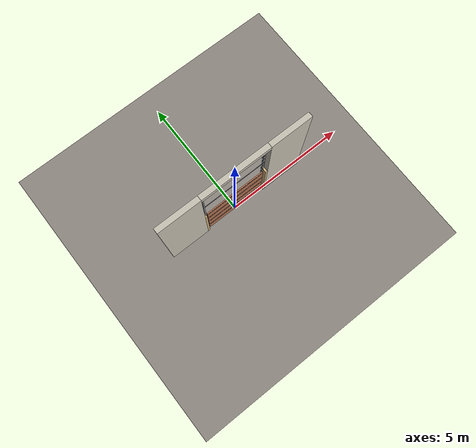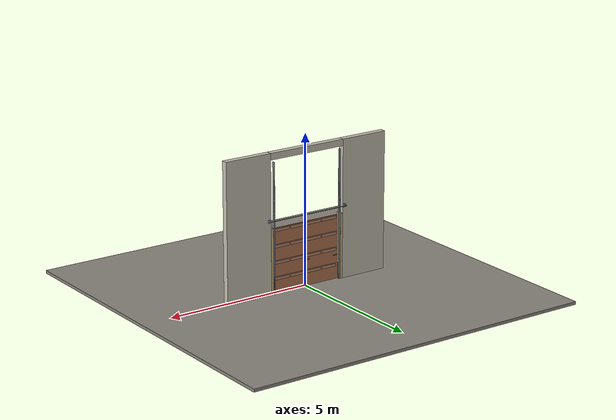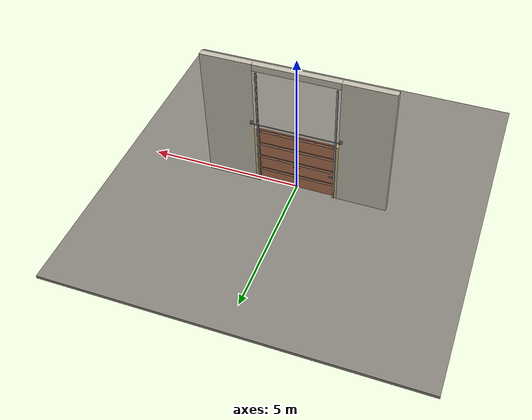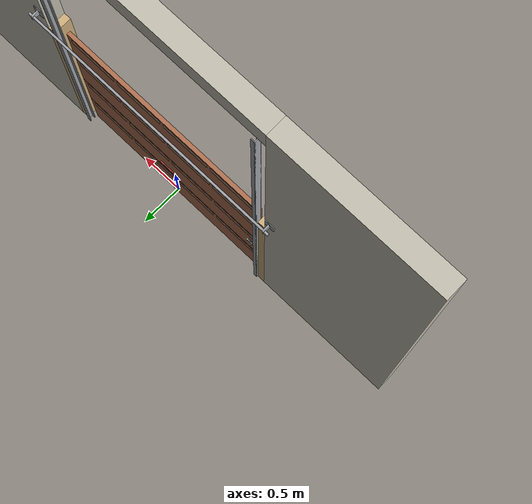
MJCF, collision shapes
<?xml version="1.0" ?>
<mujoco model="db0433_garage_sectional_simple">
  <compiler angle="radian" meshdir="../../hardware" texturedir="../../textures" autolimits="true" inertiafromgeom="false"/>
  <option timestep="0.002" integrator="implicitfast" cone="elliptic" impratio="10" noslip_iterations="3">
    <flag multiccd="enable"/>
  </option>
  <size memory="16M"/>
  <default>
    <geom condim="4" solref="0.005 1" solimp="0.95 0.99 0.001"/>
    <joint solreflimit="0.005 1" solimplimit="0.95 0.99 0.001"/>
    <tendon solreflimit="0.005 1"/>
    <equality solref="0.002 1"/>
  </default>
  <visual>
    <headlight ambient="0.4 0.4 0.4" diffuse="0.7 0.7 0.7" specular="0.2 0.2 0.2"/>
    <quality shadowsize="4096"/>
    <map znear="0.01" zfar="60"/>
  </visual>
  <asset>
    <mesh name="pull_bdc5e965ab" file="pull_bdc5e965ab.obj"/>
    <material name="mat_floor" rgba="0.55 0.53 0.5 1" specular="0.2" shininess="0.15" reflectance="0"/>
    <material name="mat_wall" rgba="0.78 0.76 0.7 1" specular="0.2" shininess="0.1" reflectance="0"/>
    <material name="mat_frame" rgba="0.82 0.7 0.5 1" specular="0.2" shininess="0.45" reflectance="0"/>
    <material name="mat_track" rgba="0.65 0.66 0.68 1" specular="0.74" shininess="0.5" reflectance="0.36"/>
    <material name="mat_section_0" rgba="0.7 0.45 0.32 1" specular="0.2" shininess="0.4" reflectance="0"/>
    <material name="mat_glass" rgba="0.85 0.92 0.95 0.25" specular="0.2" shininess="0.95" reflectance="0.1"/>
    <material name="mat_section_1" rgba="0.7 0.45 0.32 1" specular="0.2" shininess="0.4" reflectance="0"/>
    <material name="mat_hinge_line" rgba="0.2 0.2 0.2 1" specular="0.2" shininess="0.3" reflectance="0"/>
    <material name="mat_section_2" rgba="0.7 0.45 0.32 1" specular="0.2" shininess="0.4" reflectance="0"/>
    <material name="mat_section_3" rgba="0.7 0.45 0.32 1" specular="0.2" shininess="0.4" reflectance="0"/>
    <material name="mat_spring" rgba="0.55 0.56 0.58 1" specular="0.8" shininess="0.55" reflectance="0.4"/>
    <material name="mat_opener" rgba="0.05 0.05 0.05 1" specular="0.38" shininess="0.3" reflectance="0.12"/>
    <material name="mat_op_black_matte_metal" rgba="0.05 0.05 0.05 1" specular="0.38" shininess="0.3" reflectance="0.12"/>
    <material name="mat_slidelock" rgba="0.65 0.66 0.68 1" specular="0.74" shininess="0.5" reflectance="0.36"/>
    <texture name="skybox" type="skybox" builtin="gradient" rgb1="0.6 0.7 0.85" rgb2="0.9 0.92 0.95" width="256" height="256"/>
  </asset>
  <worldbody>
    <light name="sun" pos="1.5 -2.5 4" dir="-0.3 0.5 -0.8" directional="true" diffuse="0.8 0.8 0.8" specular="0.3 0.3 0.3" castshadow="true"/>
    <light name="fill" pos="-1.5 2.5 3" dir="0.3 -0.5 -0.7" directional="true" diffuse="0.35 0.35 0.4" castshadow="false"/>
    <camera name="robot_view" pos="0 -2.959375 1.918625" xyaxes="1 0 0 0 0.26963 0.962964" fovy="52"/>
    <camera name="far_view" pos="0 2.959375 1.918625" xyaxes="-1 0 0 0 -0.26963 0.962964" fovy="52"/>
    <camera name="iso" pos="2.249125 -2.485875 2.392125" xyaxes="0.741536 0.670913 0 -0.242917 0.268487 0.932151" fovy="46"/>
    <camera name="detail_handle" pos="0.25 -1.1725 1.25" xyaxes="0.975133 0.221621 0 -0.065674 0.288965 0.955084" fovy="38"/>
    <geom name="floor" type="box" size="6 6 0.05" pos="0 0 -0.05" material="mat_floor" group="0" contype="1" conaffinity="1" friction="0.8 0.005 0.0001" density="2400"/>
    <geom name="wall_left" type="box" size="0.8175 0.1 2.305" pos="-2.1825 0 2.305" material="mat_wall" group="0" contype="1" conaffinity="1" friction="0.6 0.005 0.0001" density="800"/>
    <geom name="wall_right" type="box" size="0.8175 0.1 2.305" pos="2.1825 0 2.305" material="mat_wall" group="0" contype="1" conaffinity="1" friction="0.6 0.005 0.0001" density="800"/>
    <geom name="wall_header" type="box" size="1.365 0.1 0.11" pos="0 0 4.5" material="mat_wall" group="0" contype="1" conaffinity="1" friction="0.6 0.005 0.0001" density="800"/>
    <geom name="garage_jamb_l" type="box" size="0.04 0.1 1.09" pos="-1.325 0 1.09" material="mat_frame" group="0" contype="1" conaffinity="1" friction="0.6 0.005 0.0001" density="400"/>
    <geom name="garage_jamb_r" type="box" size="0.04 0.1 1.09" pos="1.325 0 1.09" material="mat_frame" group="0" contype="1" conaffinity="1" friction="0.6 0.005 0.0001" density="400"/>
    <geom name="track_l" type="box" size="0.004 0.033 2.155" pos="-1.27 0.0825 2.155" material="mat_track" group="0" contype="1" conaffinity="1" friction="0.6 0.005 0.0001" density="7850"/>
    <geom name="track_l_flange_n" type="box" size="0.022 0.004 2.155" pos="-1.252 0.0535 2.155" material="mat_track" group="0" contype="1" conaffinity="1" friction="0.6 0.005 0.0001" density="7850"/>
    <geom name="track_l_flange_p" type="box" size="0.022 0.004 2.155" pos="-1.252 0.1115 2.155" material="mat_track" group="0" contype="1" conaffinity="1" friction="0.6 0.005 0.0001" density="7850"/>
    <geom name="track_r" type="box" size="0.004 0.033 2.155" pos="1.27 0.0825 2.155" material="mat_track" group="0" contype="1" conaffinity="1" friction="0.6 0.005 0.0001" density="7850"/>
    <geom name="track_r_flange_n" type="box" size="0.022 0.004 2.155" pos="1.252 0.0535 2.155" material="mat_track" group="0" contype="1" conaffinity="1" friction="0.6 0.005 0.0001" density="7850"/>
    <geom name="track_r_flange_p" type="box" size="0.022 0.004 2.155" pos="1.252 0.1115 2.155" material="mat_track" group="0" contype="1" conaffinity="1" friction="0.6 0.005 0.0001" density="7850"/>
    <geom name="torsion_shaft" type="cylinder" size="0.013 1.475" pos="0 0.17 2.43" quat="0.707107 0 0.707107 0" material="mat_track" group="0" contype="1" conaffinity="1" friction="0.6 0.005 0.0001" density="7850"/>
    <geom name="torsion_bearing_plate_l" type="box" size="0.055 0.004 0.055" pos="-1.425 0.104 2.43" material="mat_track" group="1" contype="0" conaffinity="0" density="7850"/>
    <geom name="torsion_bearing_arm_l" type="box" size="0.008 0.049 0.03" pos="-1.425 0.139 2.43" material="mat_track" group="1" contype="0" conaffinity="0" density="7850"/>
    <geom name="torsion_bearing_plate_r" type="box" size="0.055 0.004 0.055" pos="1.425 0.104 2.43" material="mat_track" group="1" contype="0" conaffinity="0" density="7850"/>
    <geom name="torsion_bearing_arm_r" type="box" size="0.008 0.049 0.03" pos="1.425 0.139 2.43" material="mat_track" group="1" contype="0" conaffinity="0" density="7850"/>
    <geom name="slide_lock_keeper_leg_n" type="box" size="0.007 0.0025 0.0155" pos="-1.265 0.034 0.82025" quat="0 0 -0.707107 0.707107" material="mat_track" group="0" contype="1" conaffinity="1" friction="0.6 0.005 0.0001" density="7800"/>
    <geom name="slide_lock_keeper_leg_p" type="box" size="0.007 0.0025 0.0155" pos="-1.265 0.034 0.79725" quat="0 0 -0.707107 0.707107" material="mat_track" group="0" contype="1" conaffinity="1" friction="0.6 0.005 0.0001" density="7800"/>
    <geom name="slide_lock_keeper_bridge" type="box" size="0.007 0.014 0.0025" pos="-1.265 0.021 0.80875" quat="0 0 -0.707107 0.707107" material="mat_track" group="0" contype="1" conaffinity="1" friction="0.6 0.005 0.0001" density="7800"/>
    <geom name="slide_lock_keeper_base" type="box" size="0.015 0.02 0.001" pos="-1.265 0.0485 0.80875" quat="0 0 -0.707107 0.707107" material="mat_track" group="1" contype="0" conaffinity="0" density="7800"/>
    <site name="approach_point" pos="0 -2 0" quat="1 0 0 0" size="0.05" rgba="0.2 0.9 0.2 0.5" group="4"/>
    <site name="goal_point" pos="0 2 0" quat="1 0 0 0" size="0.05" rgba="0.2 0.9 0.2 0.5" group="4"/>
    <site name="door_plane_center" pos="0 0 1.09" quat="1 0 0 0" size="0.02" rgba="0.2 0.9 0.2 0.5" group="4"/>
    <body name="door" pos="0 0 0">
      <inertial pos="-0.002072 0.000052 1.072344" mass="79.93599" quat="0.707118 -0.707092 -0.00159 -0.001676" diaginertia="29.836411734 39.285429289 69.086203695"/>
      <joint name="door_slide" type="slide" axis="0 0 1" limited="true" range="0 2.08" damping="6.004164" frictionloss="31.41395" stiffness="96.313627" springref="6.933333" armature="0.5"/>
      <geom name="section_0_slab" type="box" size="1.22 0.0225 0.26625" pos="0 0 0.27625" material="mat_section_0" group="0" contype="1" conaffinity="1" friction="0.35 0.005 0.0001" density="1"/>
      <geom name="section_0_glass_0" type="box" size="0.2775 0.0233 0.0426" pos="-0.8925 0 0.46795" material="mat_glass" group="1" contype="0" conaffinity="0" density="1"/>
      <geom name="section_0_glass_1" type="box" size="0.2775 0.0233 0.0426" pos="-0.2975 0 0.46795" material="mat_glass" group="1" contype="0" conaffinity="0" density="1"/>
      <geom name="section_0_glass_2" type="box" size="0.2775 0.0233 0.0426" pos="0.2975 0 0.46795" material="mat_glass" group="1" contype="0" conaffinity="0" density="1"/>
      <geom name="section_0_glass_3" type="box" size="0.2775 0.0233 0.0426" pos="0.8925 0 0.46795" material="mat_glass" group="1" contype="0" conaffinity="0" density="1"/>
      <geom name="section_1_slab" type="box" size="1.22 0.0225 0.26625" pos="0 0 0.80875" material="mat_section_1" group="0" contype="1" conaffinity="1" friction="0.35 0.005 0.0001" density="1"/>
      <geom name="section_1_glass_0" type="box" size="0.2775 0.0233 0.0426" pos="-0.8925 0 1.00045" material="mat_glass" group="1" contype="0" conaffinity="0" density="1"/>
      <geom name="section_1_glass_1" type="box" size="0.2775 0.0233 0.0426" pos="-0.2975 0 1.00045" material="mat_glass" group="1" contype="0" conaffinity="0" density="1"/>
      <geom name="section_1_glass_2" type="box" size="0.2775 0.0233 0.0426" pos="0.2975 0 1.00045" material="mat_glass" group="1" contype="0" conaffinity="0" density="1"/>
      <geom name="section_1_glass_3" type="box" size="0.2775 0.0233 0.0426" pos="0.8925 0 1.00045" material="mat_glass" group="1" contype="0" conaffinity="0" density="1"/>
      <geom name="section_2_slab" type="box" size="1.22 0.0225 0.26625" pos="0 0 1.34125" material="mat_section_2" group="0" contype="1" conaffinity="1" friction="0.35 0.005 0.0001" density="1"/>
      <geom name="section_2_glass_0" type="box" size="0.2775 0.0233 0.0426" pos="-0.8925 0 1.53295" material="mat_glass" group="1" contype="0" conaffinity="0" density="1"/>
      <geom name="section_2_glass_1" type="box" size="0.2775 0.0233 0.0426" pos="-0.2975 0 1.53295" material="mat_glass" group="1" contype="0" conaffinity="0" density="1"/>
      <geom name="section_2_glass_2" type="box" size="0.2775 0.0233 0.0426" pos="0.2975 0 1.53295" material="mat_glass" group="1" contype="0" conaffinity="0" density="1"/>
      <geom name="section_2_glass_3" type="box" size="0.2775 0.0233 0.0426" pos="0.8925 0 1.53295" material="mat_glass" group="1" contype="0" conaffinity="0" density="1"/>
      <geom name="section_3_slab" type="box" size="1.22 0.0225 0.26625" pos="0 0 1.87375" material="mat_section_3" group="0" contype="1" conaffinity="1" friction="0.35 0.005 0.0001" density="1"/>
      <geom name="section_3_glass_0" type="box" size="0.2775 0.0233 0.0426" pos="-0.8925 0 2.06545" material="mat_glass" group="1" contype="0" conaffinity="0" density="1"/>
      <geom name="section_3_glass_1" type="box" size="0.2775 0.0233 0.0426" pos="-0.2975 0 2.06545" material="mat_glass" group="1" contype="0" conaffinity="0" density="1"/>
      <geom name="section_3_glass_2" type="box" size="0.2775 0.0233 0.0426" pos="0.2975 0 2.06545" material="mat_glass" group="1" contype="0" conaffinity="0" density="1"/>
      <geom name="section_3_glass_3" type="box" size="0.2775 0.0233 0.0426" pos="0.8925 0 2.06545" material="mat_glass" group="1" contype="0" conaffinity="0" density="1"/>
      <geom name="lift_handle_n" type="mesh" mesh="pull_bdc5e965ab" pos="0 -0.0225 0.9" quat="0.707107 0.707107 0 0" material="mat_op_black_matte_metal" group="1" contype="0" conaffinity="0" density="3000"/>
      <geom name="lift_handle_col_n" type="box" size="0.1 0.006 0.015" pos="0 -0.0725 0.9" material="mat_op_black_matte_metal" group="3" contype="1" conaffinity="1" rgba="0.8 0.3 0.3 0.25" friction="0.6 0.005 0.0001" density="3000"/>
      <geom name="lift_handle_p" type="mesh" mesh="pull_bdc5e965ab" pos="0 0.0225 0.9" quat="-0.707107 0.707107 0 0" material="mat_op_black_matte_metal" group="1" contype="0" conaffinity="0" density="3000"/>
      <geom name="lift_handle_col_p" type="box" size="0.1 0.006 0.015" pos="0 0.0725 0.9" material="mat_op_black_matte_metal" group="3" contype="1" conaffinity="1" rgba="0.8 0.3 0.3 0.25" friction="0.6 0.005 0.0001" density="3000"/>
      <geom name="garage_slide_lock_plate" type="box" size="0.0745 0.019 0.001" pos="-1.1375 0.0235 0.80875" quat="0 0 0.707107 0.707107" material="mat_slidelock" group="1" contype="0" conaffinity="0" density="7800"/>
      <geom name="garage_slide_lock_guide_0_leg_n" type="box" size="0.006 0.002 0.0115" pos="-1.204 0.034 0.79775" quat="0 0 0.707107 0.707107" material="mat_slidelock" group="1" contype="0" conaffinity="0" density="7800"/>
      <geom name="garage_slide_lock_guide_0_leg_p" type="box" size="0.006 0.002 0.0115" pos="-1.204 0.034 0.81975" quat="0 0 0.707107 0.707107" material="mat_slidelock" group="1" contype="0" conaffinity="0" density="7800"/>
      <geom name="garage_slide_lock_guide_0_bridge" type="box" size="0.006 0.013 0.002" pos="-1.204 0.0435 0.80875" quat="0 0 0.707107 0.707107" material="mat_slidelock" group="1" contype="0" conaffinity="0" density="7800"/>
      <geom name="garage_slide_lock_guide_1_leg_n" type="box" size="0.006 0.002 0.0115" pos="-1.073 0.034 0.79775" quat="0 0 0.707107 0.707107" material="mat_slidelock" group="1" contype="0" conaffinity="0" density="7800"/>
      <geom name="garage_slide_lock_guide_1_leg_p" type="box" size="0.006 0.002 0.0115" pos="-1.073 0.034 0.81975" quat="0 0 0.707107 0.707107" material="mat_slidelock" group="1" contype="0" conaffinity="0" density="7800"/>
      <geom name="garage_slide_lock_guide_1_bridge" type="box" size="0.006 0.013 0.002" pos="-1.073 0.0435 0.80875" quat="0 0 0.707107 0.707107" material="mat_slidelock" group="1" contype="0" conaffinity="0" density="7800"/>
      <site name="lift_handle_grip_n" pos="0 -0.0725 0.9" quat="1 0 0 0" size="0.012" rgba="0.2 0.9 0.2 0.5" group="4"/>
      <site name="lift_handle_grip_p" pos="0 0.0725 0.9" quat="1 0 0 0" size="0.012" rgba="0.2 0.9 0.2 0.5" group="4"/>
      <body name="garage_slide_lock" pos="-1.22 0.0325 0.80875">
        <inertial pos="0.076198 0.001798 0" mass="0.137184" quat="0.999982 0 0 0.005944" diaginertia="0.000006472 0.000189087 0.000193217"/>
        <joint name="garage_slide_lock_slide" type="slide" axis="1 0 0" limited="true" range="0 0.05" damping="1" frictionloss="1" armature="0.1" ref="0.05"/>
        <geom name="garage_slide_lock_rod" type="capsule" size="0.006 0.064" pos="0.075 0 0" quat="0.707107 0 -0.707107 0" material="mat_slidelock" group="0" contype="1" conaffinity="1" friction="0.6 0.005 0.0001" density="7850"/>
        <geom name="garage_slide_lock_knob" type="capsule" size="0.005 0.01" pos="0.085 0.015 0" quat="0.707107 -0.707107 0 0" material="mat_slidelock" group="0" contype="1" conaffinity="1" friction="0.6 0.005 0.0001" density="7850"/>
        <site name="slide_lock_grip" pos="0.085 0.034 0" quat="1 0 0 0" size="0.012" rgba="0.2 0.9 0.2 0.5" group="4"/>
      </body>
    </body>
  </worldbody>
  <sensor>
    <jointpos name="door_slide_pos" joint="door_slide"/>
    <jointvel name="door_slide_vel" joint="door_slide"/>
    <jointpos name="garage_slide_lock_slide_pos" joint="garage_slide_lock_slide"/>
    <jointvel name="garage_slide_lock_slide_vel" joint="garage_slide_lock_slide"/>
  </sensor>
</mujoco>
